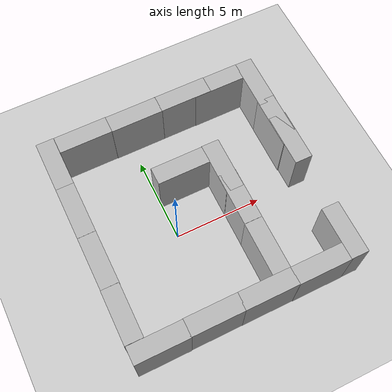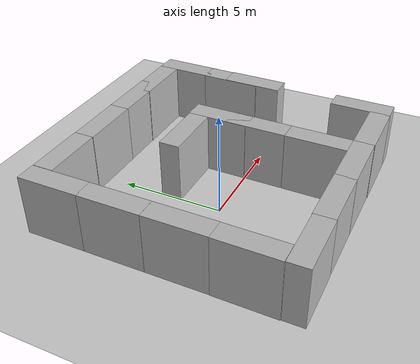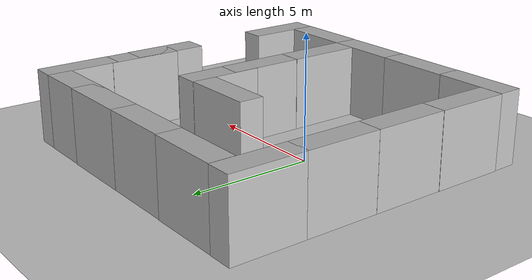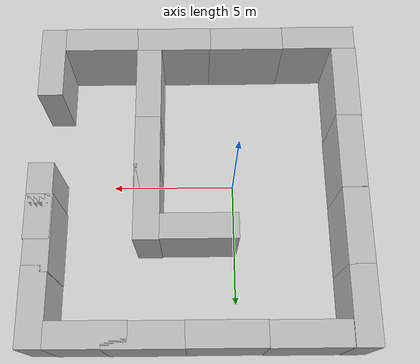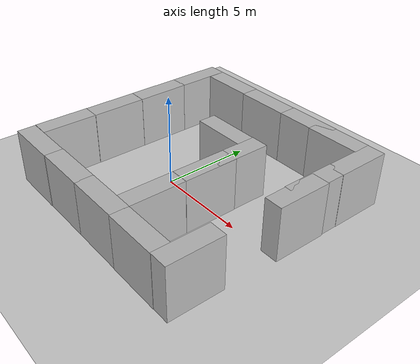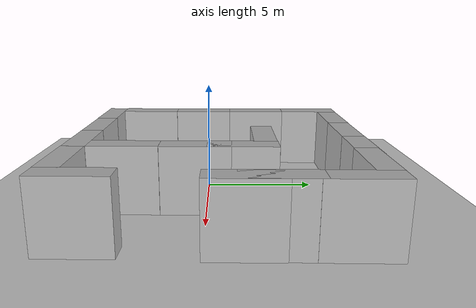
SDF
<sdf version="1.6">
 <world name="default">
  <light name="sun" type="directional">
   <pose>0 0 10 0 -0 0</pose>
   <diffuse>0.8 0.8 0.8 1</diffuse>
   <specular>0.2 0.2 0.2 1</specular>
   <attenuation>
    <range>1000</range>
    <constant>0.9</constant>
    <linear>0.01</linear>
    <quadratic>0.001</quadratic>
   </attenuation>
   <direction>-0.5 0.1 -0.9</direction>
  </light>
  <model name="ground_plane">
   <static>1</static>
   <link name="link">
    <collision name="collision">
     <geometry><plane><normal>0 0 1</normal><size>100 100</size></plane></geometry>
     <surface><friction><ode><mu>100</mu><mu2>50</mu2></ode></friction></surface>
    </collision>
    <visual name="visual">
     <cast_shadows>0</cast_shadows>
     <geometry><plane><normal>0 0 1</normal><size>100 100</size></plane></geometry>
     <material>
      <script><uri>file://media/materials/scripts/gazebo.material</uri><name>Gazebo/Grey</name></script>
     </material>
    </visual>
   </link>
  </model>
  <gravity>0 0 -9.8</gravity>
  <magnetic_field>6e-06 2.3e-05 -4.2e-05</magnetic_field>
  <atmosphere type="adiabatic"/>
  <physics name="default_physics" default="0" type="ode">
   <max_step_size>0.001</max_step_size>
   <real_time_factor>1</real_time_factor>
   <real_time_update_rate>1000</real_time_update_rate>
  </physics>
  <scene><ambient>0.4 0.4 0.4 1</ambient><background>0.7 0.7 0.7 1</background><shadows>1</shadows></scene>
  <spherical_coordinates>
   <surface_model>EARTH_WGS84</surface_model>
   <latitude_deg>0</latitude_deg>
   <longitude_deg>0</longitude_deg>
   <elevation>0</elevation>
   <heading_deg>0</heading_deg>
  </spherical_coordinates>
  <model name="brick_box_3x1x3">
   <static>1</static>
   <link name="chassis">
    <pose>0 0 1.5 0 -0 0</pose>
    <collision name="collision"><geometry><box><size>3 1 3</size></box></geometry></collision>
    <visual name="visual">
     <geometry><mesh><uri>model://brick_box_3x1x3/meshes/simple_box.dae</uri><scale>3 1 3</scale></mesh></geometry>
     <material>
      <script>
       <uri>model://brick_box_3x1x3/materials/scripts</uri>
       <uri>model://brick_box_3x1x3/materials/textures</uri>
       <name>BrickBox/Diffuse</name>
      </script>
     </material>
    </visual>
   </link>
   <pose>-0.557731 -5.45496 0 0 -0 0</pose>
  </model>
  <model name="brick_box_3x1x3_clone">
   <static>1</static>
   <link name="chassis">
    <pose>0 0 1.5 0 -0 0</pose>
    <collision name="collision"><geometry><box><size>3 1 3</size></box></geometry></collision>
    <visual name="visual">
     <geometry><mesh><uri>model://brick_box_3x1x3/meshes/simple_box.dae</uri><scale>3 1 3</scale></mesh></geometry>
     <material>
      <script>
       <uri>model://brick_box_3x1x3/materials/scripts</uri>
       <uri>model://brick_box_3x1x3/materials/textures</uri>
       <name>BrickBox/Diffuse</name>
      </script>
     </material>
    </visual>
   </link>
   <pose>2.39131 -5.45661 0 0 -0 0</pose>
  </model>
  <model name="brick_box_3x1x3_clone_clone">
   <static>1</static>
   <link name="chassis">
    <pose>0 0 1.5 0 -0 0</pose>
    <collision name="collision"><geometry><box><size>3 1 3</size></box></geometry></collision>
    <visual name="visual">
     <geometry><mesh><uri>model://brick_box_3x1x3/meshes/simple_box.dae</uri><scale>3 1 3</scale></mesh></geometry>
     <material>
      <script>
       <uri>model://brick_box_3x1x3/materials/scripts</uri>
       <uri>model://brick_box_3x1x3/materials/textures</uri>
       <name>BrickBox/Diffuse</name>
      </script>
     </material>
    </visual>
   </link>
   <pose>-3.50837 -5.47427 0 0 -0 0</pose>
  </model>
  <model name="brick_box_3x1x3_clone_clone_clone">
   <static>1</static>
   <link name="chassis">
    <pose>0 0 1.5 0 -0 0</pose>
    <collision name="collision"><geometry><box><size>3 1 3</size></box></geometry></collision>
    <visual name="visual">
     <geometry><mesh><uri>model://brick_box_3x1x3/meshes/simple_box.dae</uri><scale>3 1 3</scale></mesh></geometry>
     <material>
      <script>
       <uri>model://brick_box_3x1x3/materials/scripts</uri>
       <uri>model://brick_box_3x1x3/materials/textures</uri>
       <name>BrickBox/Diffuse</name>
      </script>
     </material>
    </visual>
   </link>
   <pose>-4.52458 -3.46231 0 0 0 -1.57795</pose>
  </model>
  <model name="brick_box_3x1x3_clone_clone_clone_0">
   <static>1</static>
   <link name="chassis">
    <pose>0 0 1.5 0 -0 0</pose>
    <collision name="collision"><geometry><box><size>3 1 3</size></box></geometry></collision>
    <visual name="visual">
     <geometry><mesh><uri>model://brick_box_3x1x3/meshes/simple_box.dae</uri><scale>3 1 3</scale></mesh></geometry>
     <material>
      <script>
       <uri>model://brick_box_3x1x3/materials/scripts</uri>
       <uri>model://brick_box_3x1x3/materials/textures</uri>
       <name>BrickBox/Diffuse</name>
      </script>
     </material>
    </visual>
   </link>
   <pose>-2.49092 6.49095 0 0 -0 0</pose>
  </model>
  <model name="brick_box_3x1x3_clone_clone_clone_clone">
   <static>1</static>
   <link name="chassis">
    <pose>0 0 1.5 0 -0 0</pose>
    <collision name="collision"><geometry><box><size>3 1 3</size></box></geometry></collision>
    <visual name="visual">
     <geometry><mesh><uri>model://brick_box_3x1x3/meshes/simple_box.dae</uri><scale>3 1 3</scale></mesh></geometry>
     <material>
      <script>
       <uri>model://brick_box_3x1x3/materials/scripts</uri>
       <uri>model://brick_box_3x1x3/materials/textures</uri>
       <name>BrickBox/Diffuse</name>
      </script>
     </material>
    </visual>
   </link>
   <pose>-4.50162 -0.461938 0 0 0 -1.57029</pose>
  </model>
  <model name="brick_box_3x1x3_clone_clone_clone_clone_0">
   <static>1</static>
   <link name="chassis">
    <pose>0 0 1.5 0 -0 0</pose>
    <collision name="collision"><geometry><box><size>3 1 3</size></box></geometry></collision>
    <visual name="visual">
     <geometry><mesh><uri>model://brick_box_3x1x3/meshes/simple_box.dae</uri><scale>3 1 3</scale></mesh></geometry>
     <material>
      <script>
       <uri>model://brick_box_3x1x3/materials/scripts</uri>
       <uri>model://brick_box_3x1x3/materials/textures</uri>
       <name>BrickBox/Diffuse</name>
      </script>
     </material>
    </visual>
   </link>
   <pose>-4.5021 2.54039 0 0 0 -1.57029</pose>
  </model>
  <model name="brick_box_3x1x3_clone_clone_clone_clone_1">
   <static>1</static>
   <link name="chassis">
    <pose>0 0 1.5 0 -0 0</pose>
    <collision name="collision"><geometry><box><size>3 1 3</size></box></geometry></collision>
    <visual name="visual">
     <geometry><mesh><uri>model://brick_box_3x1x3/meshes/simple_box.dae</uri><scale>3 1 3</scale></mesh></geometry>
     <material>
      <script>
       <uri>model://brick_box_3x1x3/materials/scripts</uri>
       <uri>model://brick_box_3x1x3/materials/textures</uri>
       <name>BrickBox/Diffuse</name>
      </script>
     </material>
    </visual>
   </link>
   <pose>-4.50321 5.50068 0 0 0 -1.57029</pose>
  </model>
  <model name="brick_box_3x1x3_clone_clone_clone_0_clone">
   <static>1</static>
   <link name="chassis">
    <pose>0 0 1.5 0 -0 0</pose>
    <collision name="collision"><geometry><box><size>3 1 3</size></box></geometry></collision>
    <visual name="visual">
     <geometry><mesh><uri>model://brick_box_3x1x3/meshes/simple_box.dae</uri><scale>3 1 3</scale></mesh></geometry>
     <material>
      <script>
       <uri>model://brick_box_3x1x3/materials/scripts</uri>
       <uri>model://brick_box_3x1x3/materials/textures</uri>
       <name>BrickBox/Diffuse</name>
      </script>
     </material>
    </visual>
   </link>
   <pose>0.494442 6.47073 0 0 -0 0</pose>
  </model>
  <model name="brick_box_3x1x3_clone_clone_clone_0_clone_0">
   <static>1</static>
   <link name="chassis">
    <pose>0 0 1.5 0 -0 0</pose>
    <collision name="collision"><geometry><box><size>3 1 3</size></box></geometry></collision>
    <visual name="visual">
     <geometry><mesh><uri>model://brick_box_3x1x3/meshes/simple_box.dae</uri><scale>3 1 3</scale></mesh></geometry>
     <material>
      <script>
       <uri>model://brick_box_3x1x3/materials/scripts</uri>
       <uri>model://brick_box_3x1x3/materials/textures</uri>
       <name>BrickBox/Diffuse</name>
      </script>
     </material>
    </visual>
   </link>
   <pose>3.47552 6.47368 0 0 -0 0</pose>
  </model>
  <model name="brick_box_3x1x3_clone_clone_clone_clone_2">
   <static>1</static>
   <link name="chassis">
    <pose>0 0 1.5 0 -0 0</pose>
    <collision name="collision"><geometry><box><size>3 1 3</size></box></geometry></collision>
    <visual name="visual">
     <geometry><mesh><uri>model://brick_box_3x1x3/meshes/simple_box.dae</uri><scale>3 1 3</scale></mesh></geometry>
     <material>
      <script>
       <uri>model://brick_box_3x1x3/materials/scripts</uri>
       <uri>model://brick_box_3x1x3/materials/textures</uri>
       <name>BrickBox/Diffuse</name>
      </script>
     </material>
    </visual>
   </link>
   <pose>3.40259 -3.46278 0 0 0 -1.57795</pose>
  </model>
  <model name="brick_box_3x1x3_clone_clone_clone_clone_3">
   <static>1</static>
   <link name="chassis">
    <pose>0 0 1.5 0 -0 0</pose>
    <collision name="collision"><geometry><box><size>3 1 3</size></box></geometry></collision>
    <visual name="visual">
     <geometry><mesh><uri>model://brick_box_3x1x3/meshes/simple_box.dae</uri><scale>3 1 3</scale></mesh></geometry>
     <material>
      <script>
       <uri>model://brick_box_3x1x3/materials/scripts</uri>
       <uri>model://brick_box_3x1x3/materials/textures</uri>
       <name>BrickBox/Diffuse</name>
      </script>
     </material>
    </visual>
   </link>
   <pose>3.42697 -0.457076 0 0 0 -1.57795</pose>
  </model>
  <model name="brick_box_3x1x3_clone_clone_clone_clone_4">
   <static>1</static>
   <link name="chassis">
    <pose>0 0 1.5 0 -0 0</pose>
    <collision name="collision"><geometry><box><size>3 1 3</size></box></geometry></collision>
    <visual name="visual">
     <geometry><mesh><uri>model://brick_box_3x1x3/meshes/simple_box.dae</uri><scale>3 1 3</scale></mesh></geometry>
     <material>
      <script>
       <uri>model://brick_box_3x1x3/materials/scripts</uri>
       <uri>model://brick_box_3x1x3/materials/textures</uri>
       <name>BrickBox/Diffuse</name>
      </script>
     </material>
    </visual>
   </link>
   <pose>3.42657 1.53017 0 0 0 -1.57795</pose>
  </model>
  <model name="brick_box_3x1x3_clone_clone_clone_0_clone_clone">
   <static>1</static>
   <link name="chassis">
    <pose>0 0 1.5 0 -0 0</pose>
    <collision name="collision"><geometry><box><size>3 1 3</size></box></geometry></collision>
    <visual name="visual">
     <geometry><mesh><uri>model://brick_box_3x1x3/meshes/simple_box.dae</uri><scale>3 1 3</scale></mesh></geometry>
     <material>
      <script>
       <uri>model://brick_box_3x1x3/materials/scripts</uri>
       <uri>model://brick_box_3x1x3/materials/textures</uri>
       <name>BrickBox/Diffuse</name>
      </script>
     </material>
    </visual>
   </link>
   <pose>1.44424 2.50832 0 0 -0 0</pose>
  </model>
  <model name="brick_box_3x1x3_clone_clone_clone_clone_4_clone">
   <static>1</static>
   <link name="chassis">
    <pose>0 0 1.5 0 -0 0</pose>
    <collision name="collision"><geometry><box><size>3 1 3</size></box></geometry></collision>
    <visual name="visual">
     <geometry><mesh><uri>model://brick_box_3x1x3/meshes/simple_box.dae</uri><scale>3 1 3</scale></mesh></geometry>
     <material>
      <script>
       <uri>model://brick_box_3x1x3/materials/scripts</uri>
       <uri>model://brick_box_3x1x3/materials/textures</uri>
       <name>BrickBox/Diffuse</name>
      </script>
     </material>
    </visual>
   </link>
   <pose>7.32985 -4.45985 0 0 0 -1.57795</pose>
  </model>
  <model name="brick_box_3x1x3_clone_clone_0">
   <static>1</static>
   <link name="chassis">
    <pose>0 0 1.5 0 -0 0</pose>
    <collision name="collision"><geometry><box><size>3 1 3</size></box></geometry></collision>
    <visual name="visual">
     <geometry><mesh><uri>model://brick_box_3x1x3/meshes/simple_box.dae</uri><scale>3 1 3</scale></mesh></geometry>
     <material>
      <script>
       <uri>model://brick_box_3x1x3/materials/scripts</uri>
       <uri>model://brick_box_3x1x3/materials/textures</uri>
       <name>BrickBox/Diffuse</name>
      </script>
     </material>
    </visual>
   </link>
   <pose>5.37177 -5.47292 0 0 -0 0</pose>
  </model>
  <model name="brick_box_3x1x3_clone_clone_clone_0_clone_0_clone">
   <static>1</static>
   <link name="chassis">
    <pose>0 0 1.5 0 -0 0</pose>
    <collision name="collision"><geometry><box><size>3 1 3</size></box></geometry></collision>
    <visual name="visual">
     <geometry><mesh><uri>model://brick_box_3x1x3/meshes/simple_box.dae</uri><scale>3 1 3</scale></mesh></geometry>
     <material>
      <script>
       <uri>model://brick_box_3x1x3/materials/scripts</uri>
       <uri>model://brick_box_3x1x3/materials/textures</uri>
       <name>BrickBox/Diffuse</name>
      </script>
     </material>
    </visual>
   </link>
   <pose>5.53096 6.45313 0 0 -0 0</pose>
  </model>
  <model name="brick_box_3x1x3_clone_clone_clone_clone_4_clone_clone">
   <static>1</static>
   <link name="chassis">
    <pose>0 0 1.5 0 -0 0</pose>
    <collision name="collision"><geometry><box><size>3 1 3</size></box></geometry></collision>
    <visual name="visual">
     <geometry><mesh><uri>model://brick_box_3x1x3/meshes/simple_box.dae</uri><scale>3 1 3</scale></mesh></geometry>
     <material>
      <script>
       <uri>model://brick_box_3x1x3/materials/scripts</uri>
       <uri>model://brick_box_3x1x3/materials/textures</uri>
       <name>BrickBox/Diffuse</name>
      </script>
     </material>
    </visual>
   </link>
   <pose>7.49605 5.44098 0 0 0 -1.57795</pose>
  </model>
  <model name="brick_box_3x1x3_clone_clone_clone_clone_4_clone_clone_0">
   <static>1</static>
   <link name="chassis">
    <pose>0 0 1.5 0 -0 0</pose>
    <collision name="collision"><geometry><box><size>3 1 3</size></box></geometry></collision>
    <visual name="visual">
     <geometry><mesh><uri>model://brick_box_3x1x3/meshes/simple_box.dae</uri><scale>3 1 3</scale></mesh></geometry>
     <material>
      <script>
       <uri>model://brick_box_3x1x3/materials/scripts</uri>
       <uri>model://brick_box_3x1x3/materials/textures</uri>
       <name>BrickBox/Diffuse</name>
      </script>
     </material>
    </visual>
   </link>
   <pose>7.46361 2.69049 0 0 0 -1.57795</pose>
  </model>
  <model name="brick_box_3x1x3_clone_clone_clone_clone_4_clone_clone_1">
   <static>1</static>
   <link name="chassis">
    <pose>0 0 1.5 0 -0 0</pose>
    <collision name="collision"><geometry><box><size>3 1 3</size></box></geometry></collision>
    <visual name="visual">
     <geometry><mesh><uri>model://brick_box_3x1x3/meshes/simple_box.dae</uri><scale>3 1 3</scale></mesh></geometry>
     <material>
      <script>
       <uri>model://brick_box_3x1x3/materials/scripts</uri>
       <uri>model://brick_box_3x1x3/materials/textures</uri>
       <name>BrickBox/Diffuse</name>
      </script>
     </material>
    </visual>
   </link>
   <pose>7.49664 1.44641 0 0 0 -1.57795</pose>
  </model>
 </world>
</sdf>
